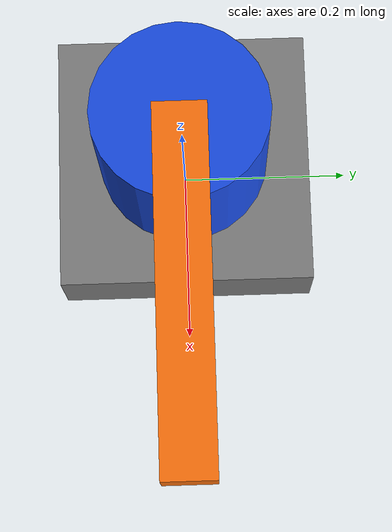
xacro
<?xml version ="1.0"?>
<robot xmlns:xacro="http://www.ros.org/wiki/xacro"
            name="robotic_arm">

     <!-- arm geometry and collision -->
    <xacro:include filename="robot_description.ros2_control.xacro"/>

    <!-- ros2_control interface -->
    <xacro:include filename="robot_description.urdf.xacro"/>

</robot>

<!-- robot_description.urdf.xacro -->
<robot xmlns:xacro="http://www.ros.org/wiki/xacro" name="robotic_arm">
<!--
 Model testowy do RViz i wlasnego hardware interface.
-->
<material name="grey">
<color rgba="0.5 0.5 0.5 1.0"/>
</material>
<material name="blue">
<color rgba="0.1 0.3 0.9 1.0"/>
</material>
<material name="orange">
<color rgba="1.0 0.45 0.05 1.0"/>
</material>
<link name="base_link">
<visual>
<origin xyz="0 0 0.05" rpy="0 0 0"/>
<geometry>
<box size="0.3 0.3 0.1"/>
</geometry>
<material name="grey"/>
</visual>
<collision>
<origin xyz="0 0 0.05" rpy="0 0 0"/>
<geometry>
<box size="0.3 0.3 0.1"/>
</geometry>
</collision>
</link>
<link name="rotating_base">
<visual>
<origin xyz="0 0 0.1" rpy="0 0 0"/>
<geometry>
<cylinder radius="0.1" length="0.2"/>
</geometry>
<material name="blue"/>
</visual>
<collision>
<origin xyz="0 0 0.1" rpy="0 0 0"/>
<geometry>
<cylinder radius="0.1" length="0.2"/>
</geometry>
</collision>
</link>
<!-- ID 0: obrot calego ramienia wokol osi Z. -->
<joint name="shoulder_joint" type="revolute">
<parent link="base_link"/>
<child link="rotating_base"/>
<origin xyz="0 0 0.1" rpy="0 0 0"/>
<axis xyz="0 0 1"/>
<limit lower="-3.14159" upper="3.14159" effort="10.0" velocity="2.0"/>
</joint>
<link name="arm_link">
<visual>
<origin xyz="0.2 0 0" rpy="0 0 0"/>
<geometry>
<box size="0.4 0.06 0.06"/>
</geometry>
<material name="orange"/>
</visual>
<collision>
<origin xyz="0.2 0 0" rpy="0 0 0"/>
<geometry>
<box size="0.4 0.06 0.06"/>
</geometry>
</collision>
</link>
<!--
 ID 1: pochylenie pomaranczowego ramienia wokol osi Y.
       Szerokie limity sa testowe: obejmuja wartosc 5.34 rad ze STM.
-->
<joint name="elbow_joint" type="revolute">
<parent link="rotating_base"/>
<child link="arm_link"/>
<origin xyz="0 0 0.2" rpy="0 0 0"/>
<axis xyz="0 1 0"/>
<limit lower="-6.28319" upper="6.28319" effort="10.0" velocity="2.0"/>
</joint>
<!--
 Zachowaj swoj dzialajacy plugin; dopisz w tym pliku elbow_joint.
       Kolejnosc jointow w ros2_control: shoulder_joint, elbow_joint.
-->
<xacro:include filename="$(find robot_description)/urdf/robot_description.ros2_control.xacro"/>
</robot>
